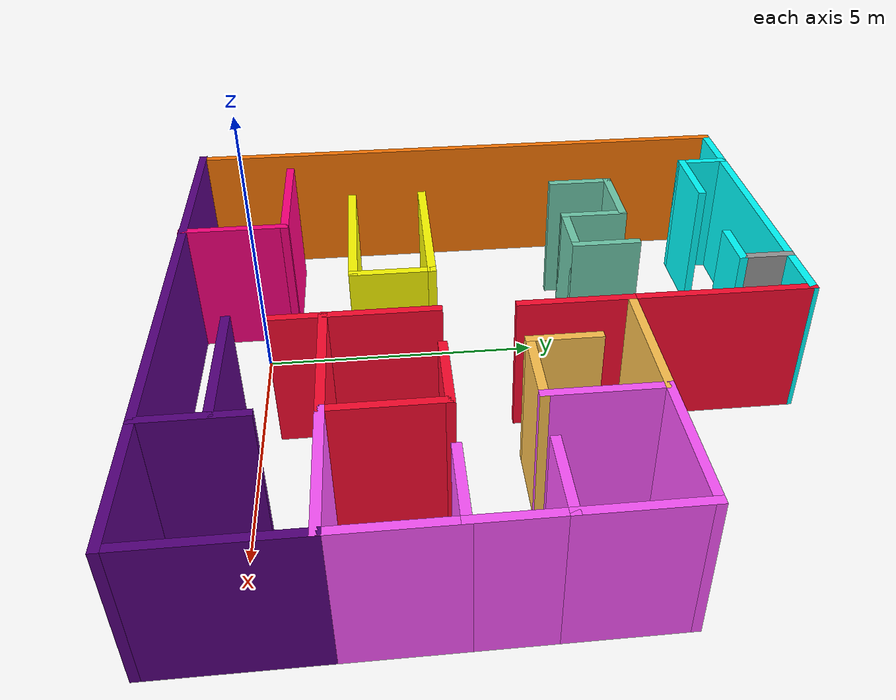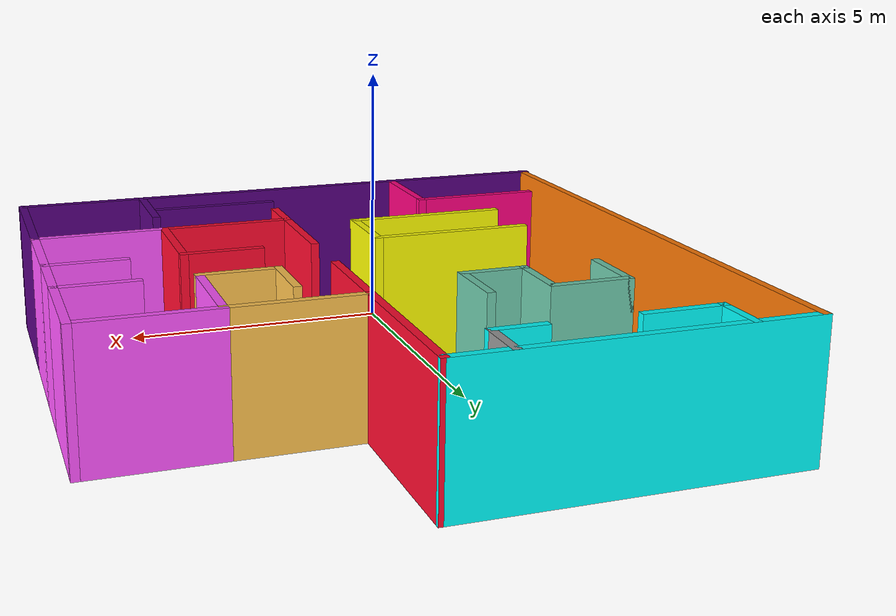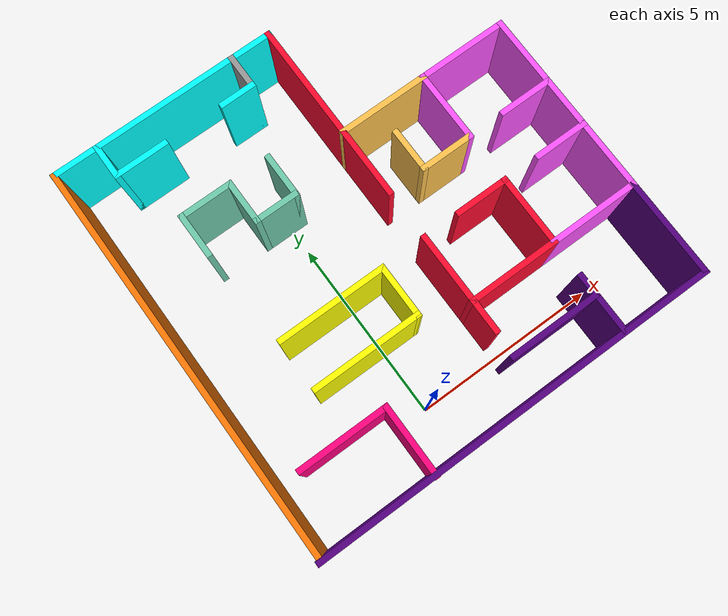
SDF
<?xml version='1.0'?>
<sdf version='1.6'>
  <model name='Building2'>
    <pose frame=''>1.42433 4.019 0 0 -0 0</pose>
    <link name='Wall_117'>
      <collision name='Wall_117_Collision'>
        <geometry>
          <box>
            <size>1 0.15 2.5</size>
          </box>
        </geometry>
        <pose frame=''>0 0 1.25 0 -0 0</pose>
      </collision>
      <visual name='Wall_117_Visual'>
        <pose frame=''>0 0 1.25 0 -0 0</pose>
        <geometry>
          <box>
            <size>1 0.15 2.5</size>
          </box>
        </geometry>
        <material>
          <script>
            <uri>file://media/materials/scripts/gazebo.material</uri>
            <name>Gazebo/Grey</name>
          </script>
          <ambient>0 1 1 1</ambient>
        </material>
      </visual>
      <pose frame=''>-4.19057 4.95831 0 0 0 -1.5708</pose>
    </link>
    <link name='Wall_121'>
      <collision name='Wall_121_Collision'>
        <geometry>
          <box>
            <size>1 0.15 2.5</size>
          </box>
        </geometry>
        <pose frame=''>0 0 1.25 0 -0 0</pose>
      </collision>
      <visual name='Wall_121_Visual'>
        <pose frame=''>0 0 1.25 0 -0 0</pose>
        <geometry>
          <box>
            <size>1 0.15 2.5</size>
          </box>
        </geometry>
        <material>
          <script>
            <uri>file://media/materials/scripts/gazebo.material</uri>
            <name>Gazebo/Grey</name>
          </script>
          <ambient>1 1 1 1</ambient>
        </material>
      </visual>
      <pose frame=''>-0.347092 4.94961 0 0 0 -1.5708</pose>
    </link>
    <link name='Wall_123'>
      <collision name='Wall_123_Collision'>
        <geometry>
          <box>
            <size>1.5 0.15 2.5</size>
          </box>
        </geometry>
        <pose frame=''>0 0 1.25 0 -0 0</pose>
      </collision>
      <visual name='Wall_123_Visual'>
        <pose frame=''>0 0 1.25 0 -0 0</pose>
        <geometry>
          <box>
            <size>1.5 0.15 2.5</size>
          </box>
        </geometry>
        <material>
          <script>
            <uri>file://media/materials/scripts/gazebo.material</uri>
            <name>Gazebo/Grey</name>
          </script>
          <ambient>0 1 1 1</ambient>
        </material>
      </visual>
      <pose frame=''>-3.51557 4.53331 0 0 -0 0</pose>
    </link>
    <link name='Wall_126'>
      <collision name='Wall_126_Collision'>
        <geometry>
          <box>
            <size>1 0.15 2.5</size>
          </box>
        </geometry>
        <pose frame=''>0 0 1.25 0 -0 0</pose>
      </collision>
      <visual name='Wall_126_Visual'>
        <pose frame=''>0 0 1.25 0 -0 0</pose>
        <geometry>
          <box>
            <size>1 0.15 2.5</size>
          </box>
        </geometry>
        <material>
          <script>
            <uri>file://media/materials/scripts/gazebo.material</uri>
            <name>Gazebo/Grey</name>
          </script>
          <ambient>0 1 1 1</ambient>
        </material>
      </visual>
      <pose frame=''>-0.772092 4.52461 0 0 -0 3.14159</pose>
    </link>
    <link name='Wall_128'>
      <collision name='Wall_128_Collision'>
        <geometry>
          <box>
            <size>2.75 0.15 2.5</size>
          </box>
        </geometry>
        <pose frame=''>0 0 1.25 0 -0 0</pose>
      </collision>
      <visual name='Wall_128_Visual'>
        <pose frame=''>0 0 1.25 0 -0 0</pose>
        <geometry>
          <box>
            <size>2.75 0.15 2.5</size>
          </box>
        </geometry>
        <material>
          <script>
            <uri>file://media/materials/scripts/gazebo.material</uri>
            <name>Gazebo/Grey</name>
          </script>
          <ambient>0.333333 0 0.498039 1</ambient>
        </material>
      </visual>
      <pose frame=''>5.425 -4.0735 0 0 0 -1.5708</pose>
    </link>
    <link name='Wall_129'>
      <collision name='Wall_129_Collision'>
        <geometry>
          <box>
            <size>11 0.15 2.5</size>
          </box>
        </geometry>
        <pose frame=''>0 0 1.25 0 -0 0</pose>
      </collision>
      <visual name='Wall_129_Visual'>
        <pose frame=''>0 0 1.25 0 -0 0</pose>
        <geometry>
          <box>
            <size>11 0.15 2.5</size>
          </box>
        </geometry>
        <material>
          <script>
            <uri>file://media/materials/scripts/gazebo.material</uri>
            <name>Gazebo/Grey</name>
          </script>
          <ambient>0.333333 0 0.498039 1</ambient>
        </material>
      </visual>
      <pose frame=''>0 -5.3735 0 0 -0 3.14159</pose>
    </link>
    <link name='Wall_13'>
      <collision name='Wall_13_Collision'>
        <geometry>
          <box>
            <size>1.5 0.15 2.5</size>
          </box>
        </geometry>
        <pose frame=''>0 0 1.25 0 -0 0</pose>
      </collision>
      <visual name='Wall_13_Visual'>
        <pose frame=''>0 0 1.25 0 -0 0</pose>
        <geometry>
          <box>
            <size>1.5 0.15 2.5</size>
          </box>
        </geometry>
        <material>
          <script>
            <uri>file://media/materials/scripts/gazebo.material</uri>
            <name>Gazebo/Grey</name>
          </script>
          <ambient>1 0.333333 1 1</ambient>
        </material>
      </visual>
      <pose frame=''>4.75 0.426505 0 0 -0 3.14159</pose>
    </link>
    <link name='Wall_134'>
      <collision name='Wall_134_Collision'>
        <geometry>
          <box>
            <size>10.75 0.15 2.5</size>
          </box>
        </geometry>
        <pose frame=''>0 0 1.25 0 -0 0</pose>
      </collision>
      <visual name='Wall_134_Visual'>
        <pose frame=''>0 0 1.25 0 -0 0</pose>
        <geometry>
          <box>
            <size>10.75 0.15 2.5</size>
          </box>
        </geometry>
        <material>
          <script>
            <uri>file://media/materials/scripts/gazebo.material</uri>
            <name>Gazebo/Grey</name>
          </script>
          <ambient>0.996078 0.47451 0.0196078 1</ambient>
        </material>
      </visual>
      <pose frame=''>-5.37994 0.081449 0 0 0 -1.5708</pose>
    </link>
    <link name='Wall_136'>
      <collision name='Wall_136_Collision'>
        <geometry>
          <box>
            <size>1.75 0.15 2.5</size>
          </box>
        </geometry>
        <pose frame=''>0 0 1.25 0 -0 0</pose>
      </collision>
      <visual name='Wall_136_Visual'>
        <pose frame=''>0 0 1.25 0 -0 0</pose>
        <geometry>
          <box>
            <size>1.75 0.15 2.5</size>
          </box>
        </geometry>
        <material>
          <script>
            <uri>file://media/materials/scripts/gazebo.material</uri>
            <name>Gazebo/Grey</name>
          </script>
          <ambient>0.333333 0 0.498039 1</ambient>
        </material>
      </visual>
      <pose frame=''>3.0646 -4.57103 0 0 -0 1.5708</pose>
    </link>
    <link name='Wall_138'>
      <collision name='Wall_138_Collision'>
        <geometry>
          <box>
            <size>2 0.15 2.5</size>
          </box>
        </geometry>
        <pose frame=''>0 0 1.25 0 -0 0</pose>
      </collision>
      <visual name='Wall_138_Visual'>
        <pose frame=''>0 0 1.25 0 -0 0</pose>
        <geometry>
          <box>
            <size>2 0.15 2.5</size>
          </box>
        </geometry>
        <material>
          <script>
            <uri>file://media/materials/scripts/gazebo.material</uri>
            <name>Gazebo/Grey</name>
          </script>
          <ambient>1 0 0.498039 1</ambient>
        </material>
      </visual>
      <pose frame=''>-2.2951 -4.46151 0 0 -0 1.5708</pose>
    </link>
    <link name='Wall_139'>
      <collision name='Wall_139_Collision'>
        <geometry>
          <box>
            <size>2.5 0.15 2.5</size>
          </box>
        </geometry>
        <pose frame=''>0 0 1.25 0 -0 0</pose>
      </collision>
      <visual name='Wall_139_Visual'>
        <pose frame=''>0 0 1.25 0 -0 0</pose>
        <geometry>
          <box>
            <size>2.5 0.15 2.5</size>
          </box>
        </geometry>
        <material>
          <script>
            <uri>file://media/materials/scripts/gazebo.material</uri>
            <name>Gazebo/Grey</name>
          </script>
          <ambient>1 0 0.498039 1</ambient>
        </material>
      </visual>
      <pose frame=''>-3.4701 -3.53651 0 0 -0 3.14159</pose>
    </link>
    <link name='Wall_142'>
      <collision name='Wall_142_Collision'>
        <geometry>
          <box>
            <size>1.25 0.15 2.5</size>
          </box>
        </geometry>
        <pose frame=''>0 0 1.25 0 -0 0</pose>
      </collision>
      <visual name='Wall_142_Visual'>
        <pose frame=''>0 0 1.25 0 -0 0</pose>
        <geometry>
          <box>
            <size>1.25 0.15 2.5</size>
          </box>
        </geometry>
        <material>
          <script>
            <uri>file://media/materials/scripts/gazebo.material</uri>
            <name>Gazebo/Grey</name>
          </script>
          <ambient>1 0.764706 0.305882 1</ambient>
        </material>
      </visual>
      <pose frame=''>1.725 0.976505 0 0 -0 1.5708</pose>
    </link>
    <link name='Wall_144'>
      <collision name='Wall_144_Collision'>
        <geometry>
          <box>
            <size>2.5 0.15 2.5</size>
          </box>
        </geometry>
        <pose frame=''>0 0 1.25 0 -0 0</pose>
      </collision>
      <visual name='Wall_144_Visual'>
        <pose frame=''>0 0 1.25 0 -0 0</pose>
        <geometry>
          <box>
            <size>2.5 0.15 2.5</size>
          </box>
        </geometry>
        <material>
          <script>
            <uri>file://media/materials/scripts/gazebo.material</uri>
            <name>Gazebo/Grey</name>
          </script>
          <ambient>0.333333 0 0.498039 1</ambient>
        </material>
      </visual>
      <pose frame=''>1.85103 -4.31843 0 0 -0 3.14159</pose>
    </link>
    <link name='Wall_146'>
      <collision name='Wall_146_Collision'>
        <geometry>
          <box>
            <size>1.25 0.15 2.5</size>
          </box>
        </geometry>
        <pose frame=''>0 0 1.25 0 -0 0</pose>
      </collision>
      <visual name='Wall_146_Visual'>
        <pose frame=''>0 0 1.25 0 -0 0</pose>
        <geometry>
          <box>
            <size>1.25 0.15 2.5</size>
          </box>
        </geometry>
        <material>
          <script>
            <uri>file://media/materials/scripts/gazebo.material</uri>
            <name>Gazebo/Grey</name>
          </script>
          <ambient>0.435294 0.796078 0.67451 1</ambient>
        </material>
      </visual>
      <pose frame=''>-3.51913 2.24509 0 0 -0 1.5708</pose>
    </link>
    <link name='Wall_147'>
      <collision name='Wall_147_Collision'>
        <geometry>
          <box>
            <size>1.5 0.15 2.5</size>
          </box>
        </geometry>
        <pose frame=''>0 0 1.25 0 -0 0</pose>
      </collision>
      <visual name='Wall_147_Visual'>
        <pose frame=''>0 0 1.25 0 -0 0</pose>
        <geometry>
          <box>
            <size>1.5 0.15 2.5</size>
          </box>
        </geometry>
        <material>
          <script>
            <uri>file://media/materials/scripts/gazebo.material</uri>
            <name>Gazebo/Grey</name>
          </script>
          <ambient>0.435294 0.796078 0.67451 1</ambient>
        </material>
      </visual>
      <pose frame=''>-2.84413 2.79509 0 0 -0 0</pose>
    </link>
    <link name='Wall_148'>
      <collision name='Wall_148_Collision'>
        <geometry>
          <box>
            <size>1.25 0.15 2.5</size>
          </box>
        </geometry>
        <pose frame=''>0 0 1.25 0 -0 0</pose>
      </collision>
      <visual name='Wall_148_Visual'>
        <pose frame=''>0 0 1.25 0 -0 0</pose>
        <geometry>
          <box>
            <size>1.25 0.15 2.5</size>
          </box>
        </geometry>
        <material>
          <script>
            <uri>file://media/materials/scripts/gazebo.material</uri>
            <name>Gazebo/Grey</name>
          </script>
          <ambient>0.435294 0.796078 0.67451 1</ambient>
        </material>
      </visual>
      <pose frame=''>-2.16913 2.24509 0 0 0 -1.5708</pose>
    </link>
    <link name='Wall_149'>
      <collision name='Wall_149_Collision'>
        <geometry>
          <box>
            <size>1.25 0.15 2.5</size>
          </box>
        </geometry>
        <pose frame=''>0 0 1.25 0 -0 0</pose>
      </collision>
      <visual name='Wall_149_Visual'>
        <pose frame=''>0 0 1.25 0 -0 0</pose>
        <geometry>
          <box>
            <size>1.25 0.15 2.5</size>
          </box>
        </geometry>
        <material>
          <script>
            <uri>file://media/materials/scripts/gazebo.material</uri>
            <name>Gazebo/Grey</name>
          </script>
          <ambient>0.435294 0.796078 0.67451 1</ambient>
        </material>
      </visual>
      <pose frame=''>-1.61913 1.69509 0 0 -0 0</pose>
    </link>
    <link name='Wall_150'>
      <collision name='Wall_150_Collision'>
        <geometry>
          <box>
            <size>1.25 0.15 2.5</size>
          </box>
        </geometry>
        <pose frame=''>0 0 1.25 0 -0 0</pose>
      </collision>
      <visual name='Wall_150_Visual'>
        <pose frame=''>0 0 1.25 0 -0 0</pose>
        <geometry>
          <box>
            <size>1.25 0.15 2.5</size>
          </box>
        </geometry>
        <material>
          <script>
            <uri>file://media/materials/scripts/gazebo.material</uri>
            <name>Gazebo/Grey</name>
          </script>
          <ambient>0.435294 0.796078 0.67451 1</ambient>
        </material>
      </visual>
      <pose frame=''>-1.06913 2.24509 0 0 -0 1.5708</pose>
    </link>
    <link name='Wall_16'>
      <collision name='Wall_16_Collision'>
        <geometry>
          <box>
            <size>2 0.15 2.5</size>
          </box>
        </geometry>
        <pose frame=''>0 0 1.25 0 -0 0</pose>
      </collision>
      <visual name='Wall_16_Visual'>
        <pose frame=''>0 0 1.25 0 -0 0</pose>
        <geometry>
          <box>
            <size>2 0.15 2.5</size>
          </box>
        </geometry>
        <material>
          <script>
            <uri>file://media/materials/scripts/gazebo.material</uri>
            <name>Gazebo/Grey</name>
          </script>
          <ambient>1 0.333333 1 1</ambient>
        </material>
      </visual>
      <pose frame=''>5.425 1.3515 0 0 -0 1.5708</pose>
    </link>
    <link name='Wall_17'>
      <collision name='Wall_17_Collision'>
        <geometry>
          <box>
            <size>2.5 0.15 2.5</size>
          </box>
        </geometry>
        <pose frame=''>0 0 1.25 0 -0 0</pose>
      </collision>
      <visual name='Wall_17_Visual'>
        <pose frame=''>0 0 1.25 0 -0 0</pose>
        <geometry>
          <box>
            <size>2.5 0.15 2.5</size>
          </box>
        </geometry>
        <material>
          <script>
            <uri>file://media/materials/scripts/gazebo.material</uri>
            <name>Gazebo/Grey</name>
          </script>
          <ambient>1 0.333333 1 1</ambient>
        </material>
      </visual>
      <pose frame=''>4.25 2.2765 0 0 -0 3.14159</pose>
    </link>
    <link name='Wall_18'>
      <collision name='Wall_18_Collision'>
        <geometry>
          <box>
            <size>2 0.15 2.5</size>
          </box>
        </geometry>
        <pose frame=''>0 0 1.25 0 -0 0</pose>
      </collision>
      <visual name='Wall_18_Visual'>
        <pose frame=''>0 0 1.25 0 -0 0</pose>
        <geometry>
          <box>
            <size>2 0.15 2.5</size>
          </box>
        </geometry>
        <material>
          <script>
            <uri>file://media/materials/scripts/gazebo.material</uri>
            <name>Gazebo/Grey</name>
          </script>
          <ambient>1 0.333333 1 1</ambient>
        </material>
      </visual>
      <pose frame=''>3.075 1.3515 0 0 0 -1.5708</pose>
    </link>
    <link name='Wall_20'>
      <collision name='Wall_20_Collision'>
        <geometry>
          <box>
            <size>2 0.15 2.5</size>
          </box>
        </geometry>
        <pose frame=''>0 0 1.25 0 -0 0</pose>
      </collision>
      <visual name='Wall_20_Visual'>
        <pose frame=''>0 0 1.25 0 -0 0</pose>
        <geometry>
          <box>
            <size>2 0.15 2.5</size>
          </box>
        </geometry>
        <material>
          <script>
            <uri>file://media/materials/scripts/gazebo.material</uri>
            <name>Gazebo/Grey</name>
          </script>
          <ambient>1 0.333333 1 1</ambient>
        </material>
      </visual>
      <pose frame=''>5.425 -1.84849 0 0 0 -1.5708</pose>
    </link>
    <link name='Wall_23'>
      <collision name='Wall_23_Collision'>
        <geometry>
          <box>
            <size>2.5 0.15 2.5</size>
          </box>
        </geometry>
        <pose frame=''>0 0 1.25 0 -0 0</pose>
      </collision>
      <visual name='Wall_23_Visual'>
        <pose frame=''>0 0 1.25 0 -0 0</pose>
        <geometry>
          <box>
            <size>2.5 0.15 2.5</size>
          </box>
        </geometry>
        <material>
          <script>
            <uri>file://media/materials/scripts/gazebo.material</uri>
            <name>Gazebo/Grey</name>
          </script>
          <ambient>1 0.333333 1 1</ambient>
        </material>
      </visual>
      <pose frame=''>4.25 -2.7735 0 0 -0 3.14159</pose>
    </link>
    <link name='Wall_24'>
      <collision name='Wall_24_Collision'>
        <geometry>
          <box>
            <size>2 0.15 2.5</size>
          </box>
        </geometry>
        <pose frame=''>0 0 1.25 0 -0 0</pose>
      </collision>
      <visual name='Wall_24_Visual'>
        <pose frame=''>0 0 1.25 0 -0 0</pose>
        <geometry>
          <box>
            <size>2 0.15 2.5</size>
          </box>
        </geometry>
        <material>
          <script>
            <uri>file://media/materials/scripts/gazebo.material</uri>
            <name>Gazebo/Grey</name>
          </script>
          <ambient>1 0.0392157 0.180392 1</ambient>
        </material>
      </visual>
      <pose frame=''>3.075 -1.84849 0 0 -0 1.5708</pose>
    </link>
    <link name='Wall_28'>
      <collision name='Wall_28_Collision'>
        <geometry>
          <box>
            <size>1.5 0.15 2.5</size>
          </box>
        </geometry>
        <pose frame=''>0 0 1.25 0 -0 0</pose>
      </collision>
      <visual name='Wall_28_Visual'>
        <pose frame=''>0 0 1.25 0 -0 0</pose>
        <geometry>
          <box>
            <size>1.5 0.15 2.5</size>
          </box>
        </geometry>
        <material>
          <script>
            <uri>file://media/materials/scripts/gazebo.material</uri>
            <name>Gazebo/Grey</name>
          </script>
          <ambient>1 0.0392157 0.180392 1</ambient>
        </material>
      </visual>
      <pose frame=''>2.4 -0.923495 0 0 -0 3.14159</pose>
    </link>
    <link name='Wall_30'>
      <collision name='Wall_30_Collision'>
        <geometry>
          <box>
            <size>2.5 0.15 2.5</size>
          </box>
        </geometry>
        <pose frame=''>0 0 1.25 0 -0 0</pose>
      </collision>
      <visual name='Wall_30_Visual'>
        <pose frame=''>0 0 1.25 0 -0 0</pose>
        <geometry>
          <box>
            <size>2.5 0.15 2.5</size>
          </box>
        </geometry>
        <material>
          <script>
            <uri>file://media/materials/scripts/gazebo.material</uri>
            <name>Gazebo/Grey</name>
          </script>
          <ambient>1 0.0392157 0.180392 1</ambient>
        </material>
      </visual>
      <pose frame=''>1.9 -2.7735 0 0 -0 3.14159</pose>
    </link>
    <link name='Wall_31'>
      <collision name='Wall_31_Collision'>
        <geometry>
          <box>
            <size>2 0.15 2.5</size>
          </box>
        </geometry>
        <pose frame=''>0 0 1.25 0 -0 0</pose>
      </collision>
      <visual name='Wall_31_Visual'>
        <pose frame=''>0 0 1.25 0 -0 0</pose>
        <geometry>
          <box>
            <size>2 0.15 2.5</size>
          </box>
        </geometry>
        <material>
          <script>
            <uri>file://media/materials/scripts/gazebo.material</uri>
            <name>Gazebo/Grey</name>
          </script>
          <ambient>1 0.0392157 0.180392 1</ambient>
        </material>
      </visual>
      <pose frame=''>0.725 -1.84849 0 0 -0 1.5708</pose>
    </link>
    <link name='Wall_33'>
      <collision name='Wall_33_Collision'>
        <geometry>
          <box>
            <size>1.5 0.15 2.5</size>
          </box>
        </geometry>
        <pose frame=''>0 0 1.25 0 -0 0</pose>
      </collision>
      <visual name='Wall_33_Visual'>
        <pose frame=''>0 0 1.25 0 -0 0</pose>
        <geometry>
          <box>
            <size>1.5 0.15 2.5</size>
          </box>
        </geometry>
        <material>
          <script>
            <uri>file://media/materials/scripts/gazebo.material</uri>
            <name>Gazebo/Grey</name>
          </script>
          <ambient>1 0.764706 0.305882 1</ambient>
        </material>
      </visual>
      <pose frame=''>2.4 0.426505 0 0 -0 3.14159</pose>
    </link>
    <link name='Wall_35'>
      <collision name='Wall_35_Collision'>
        <geometry>
          <box>
            <size>2.5 0.15 2.5</size>
          </box>
        </geometry>
        <pose frame=''>0 0 1.25 0 -0 0</pose>
      </collision>
      <visual name='Wall_35_Visual'>
        <pose frame=''>0 0 1.25 0 -0 0</pose>
        <geometry>
          <box>
            <size>2.5 0.15 2.5</size>
          </box>
        </geometry>
        <material>
          <script>
            <uri>file://media/materials/scripts/gazebo.material</uri>
            <name>Gazebo/Grey</name>
          </script>
          <ambient>1 0.764706 0.305882 1</ambient>
        </material>
      </visual>
      <pose frame=''>1.9 2.2765 0 0 -0 3.14159</pose>
    </link>
    <link name='Wall_36'>
      <collision name='Wall_36_Collision'>
        <geometry>
          <box>
            <size>2 0.15 2.5</size>
          </box>
        </geometry>
        <pose frame=''>0 0 1.25 0 -0 0</pose>
      </collision>
      <visual name='Wall_36_Visual'>
        <pose frame=''>0 0 1.25 0 -0 0</pose>
        <geometry>
          <box>
            <size>2 0.15 2.5</size>
          </box>
        </geometry>
        <material>
          <script>
            <uri>file://media/materials/scripts/gazebo.material</uri>
            <name>Gazebo/Grey</name>
          </script>
          <ambient>1 0.0392157 0.180392 1</ambient>
        </material>
      </visual>
      <pose frame=''>0.725 1.3515 0 0 0 -1.5708</pose>
    </link>
    <link name='Wall_49'>
      <collision name='Wall_49_Collision'>
        <geometry>
          <box>
            <size>3.25 0.15 2.5</size>
          </box>
        </geometry>
        <pose frame=''>0 0 1.25 0 -0 0</pose>
      </collision>
      <visual name='Wall_49_Visual'>
        <pose frame=''>0 0 1.25 0 -0 0</pose>
        <geometry>
          <box>
            <size>3.25 0.15 2.5</size>
          </box>
        </geometry>
        <material>
          <script>
            <uri>file://media/materials/scripts/gazebo.material</uri>
            <name>Gazebo/Grey</name>
          </script>
          <ambient>1 0.0392157 0.180392 1</ambient>
        </material>
      </visual>
      <pose frame=''>0.725 3.82651 0 0 -0 1.5708</pose>
    </link>
    <link name='Wall_57'>
      <collision name='Wall_57_Collision'>
        <geometry>
          <box>
            <size>6.2599 0.15 2.5</size>
          </box>
        </geometry>
        <pose frame=''>0 0 1.25 0 -0 0</pose>
      </collision>
      <visual name='Wall_57_Visual'>
        <pose frame=''>0 0 1.25 0 -0 0</pose>
        <geometry>
          <box>
            <size>6.2599 0.15 2.5</size>
          </box>
        </geometry>
        <material>
          <script>
            <uri>file://media/materials/scripts/gazebo.material</uri>
            <name>Gazebo/Grey</name>
          </script>
          <ambient>0 1 1 1</ambient>
        </material>
      </visual>
      <pose frame=''>-2.32994 5.38145 0 0 -0 3.13997</pose>
    </link>
    <link name='Wall_6'>
      <collision name='Wall_6_Collision'>
        <geometry>
          <box>
            <size>1.5 0.15 2.5</size>
          </box>
        </geometry>
        <pose frame=''>0 0 1.25 0 -0 0</pose>
      </collision>
      <visual name='Wall_6_Visual'>
        <pose frame=''>0 0 1.25 0 -0 0</pose>
        <geometry>
          <box>
            <size>1.5 0.15 2.5</size>
          </box>
        </geometry>
        <material>
          <script>
            <uri>file://media/materials/scripts/gazebo.material</uri>
            <name>Gazebo/Grey</name>
          </script>
          <ambient>1 0.333333 1 1</ambient>
        </material>
      </visual>
      <pose frame=''>5.425 -0.248495 0 0 -0 1.5708</pose>
    </link>
    <link name='Wall_62'>
      <collision name='Wall_62_Collision'>
        <geometry>
          <box>
            <size>1 0.15 2.5</size>
          </box>
        </geometry>
        <pose frame=''>0 0 1.25 0 -0 0</pose>
      </collision>
      <visual name='Wall_62_Visual'>
        <pose frame=''>0 0 1.25 0 -0 0</pose>
        <geometry>
          <box>
            <size>1 0.15 2.5</size>
          </box>
        </geometry>
        <material>
          <script>
            <uri>file://media/materials/scripts/gazebo.material</uri>
            <name>Gazebo/Grey</name>
          </script>
          <ambient>1 0.0392157 0.180392 1</ambient>
        </material>
      </visual>
      <pose frame=''>0.725 -3.19849 0 0 0 -1.5708</pose>
    </link>
    <link name='Wall_64'>
      <collision name='Wall_64_Collision'>
        <geometry>
          <box>
            <size>3 0.15 2.5</size>
          </box>
        </geometry>
        <pose frame=''>0 0 1.25 0 -0 0</pose>
      </collision>
      <visual name='Wall_64_Visual'>
        <pose frame=''>0 0 1.25 0 -0 0</pose>
        <geometry>
          <box>
            <size>3 0.15 2.5</size>
          </box>
        </geometry>
        <material>
          <script>
            <uri>file://media/materials/scripts/gazebo.material</uri>
            <name>Gazebo/Grey</name>
          </script>
          <ambient>1 1 0 1</ambient>
        </material>
      </visual>
      <pose frame=''>-1.91107 -2.285 0 0 -0 0</pose>
    </link>
    <link name='Wall_65'>
      <collision name='Wall_65_Collision'>
        <geometry>
          <box>
            <size>1.5 0.15 2.5</size>
          </box>
        </geometry>
        <pose frame=''>0 0 1.25 0 -0 0</pose>
      </collision>
      <visual name='Wall_65_Visual'>
        <pose frame=''>0 0 1.25 0 -0 0</pose>
        <geometry>
          <box>
            <size>1.5 0.15 2.5</size>
          </box>
        </geometry>
        <material>
          <script>
            <uri>file://media/materials/scripts/gazebo.material</uri>
            <name>Gazebo/Grey</name>
          </script>
          <ambient>1 1 0 1</ambient>
        </material>
      </visual>
      <pose frame=''>-0.48607 -1.61 0 0 -0 1.5708</pose>
    </link>
    <link name='Wall_66'>
      <collision name='Wall_66_Collision'>
        <geometry>
          <box>
            <size>3 0.15 2.5</size>
          </box>
        </geometry>
        <pose frame=''>0 0 1.25 0 -0 0</pose>
      </collision>
      <visual name='Wall_66_Visual'>
        <pose frame=''>0 0 1.25 0 -0 0</pose>
        <geometry>
          <box>
            <size>3 0.15 2.5</size>
          </box>
        </geometry>
        <material>
          <script>
            <uri>file://media/materials/scripts/gazebo.material</uri>
            <name>Gazebo/Grey</name>
          </script>
          <ambient>1 1 0 1</ambient>
        </material>
      </visual>
      <pose frame=''>-1.91107 -0.935005 0 0 -0 3.14159</pose>
    </link>
    <link name='Wall_9'>
      <collision name='Wall_9_Collision'>
        <geometry>
          <box>
            <size>1.5 0.15 2.5</size>
          </box>
        </geometry>
        <pose frame=''>0 0 1.25 0 -0 0</pose>
      </collision>
      <visual name='Wall_9_Visual'>
        <pose frame=''>0 0 1.25 0 -0 0</pose>
        <geometry>
          <box>
            <size>1.5 0.15 2.5</size>
          </box>
        </geometry>
        <material>
          <script>
            <uri>file://media/materials/scripts/gazebo.material</uri>
            <name>Gazebo/Grey</name>
          </script>
          <ambient>1 0.333333 1 1</ambient>
        </material>
      </visual>
      <pose frame=''>4.75 -0.923495 0 0 -0 3.14159</pose>
    </link>
    <static>1</static>
  </model>
</sdf>
